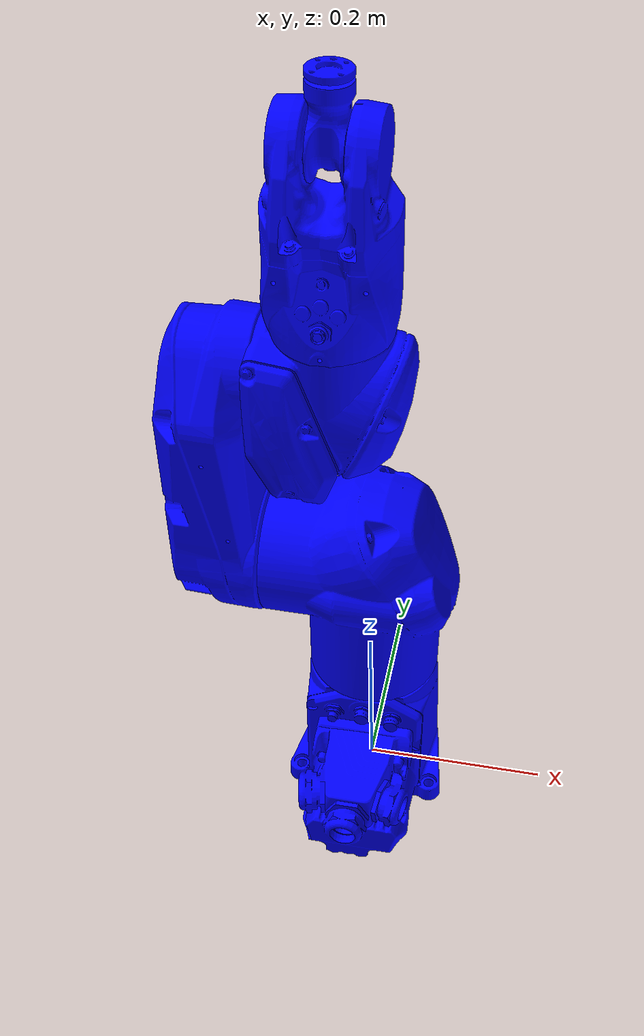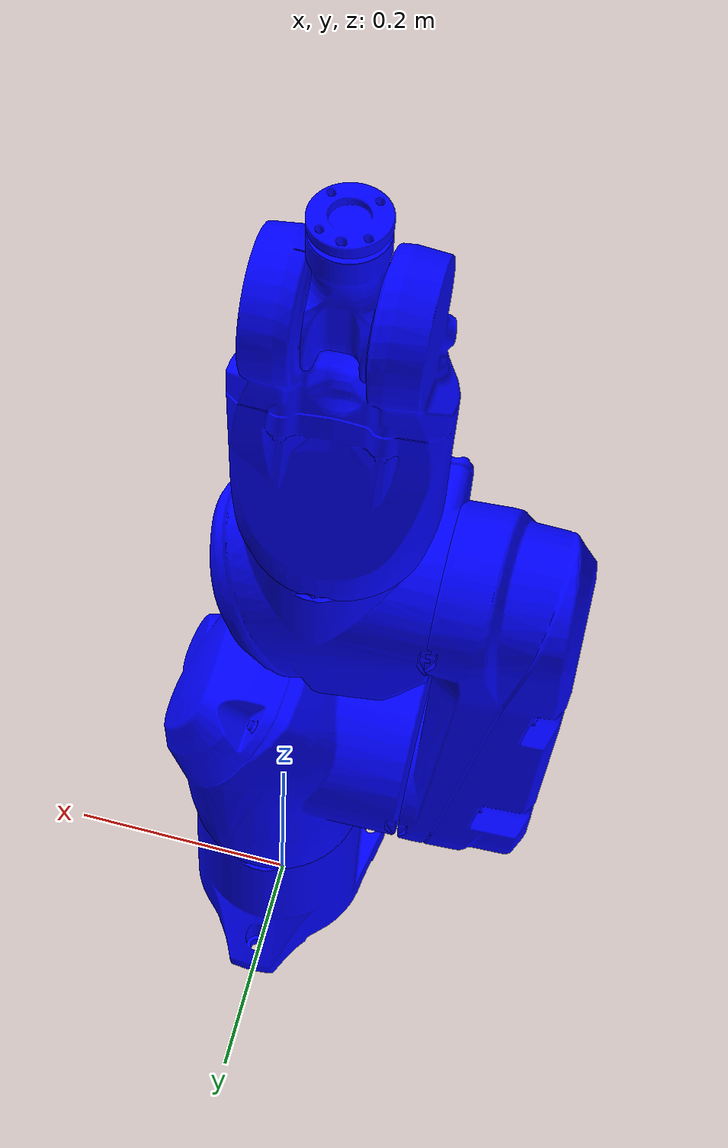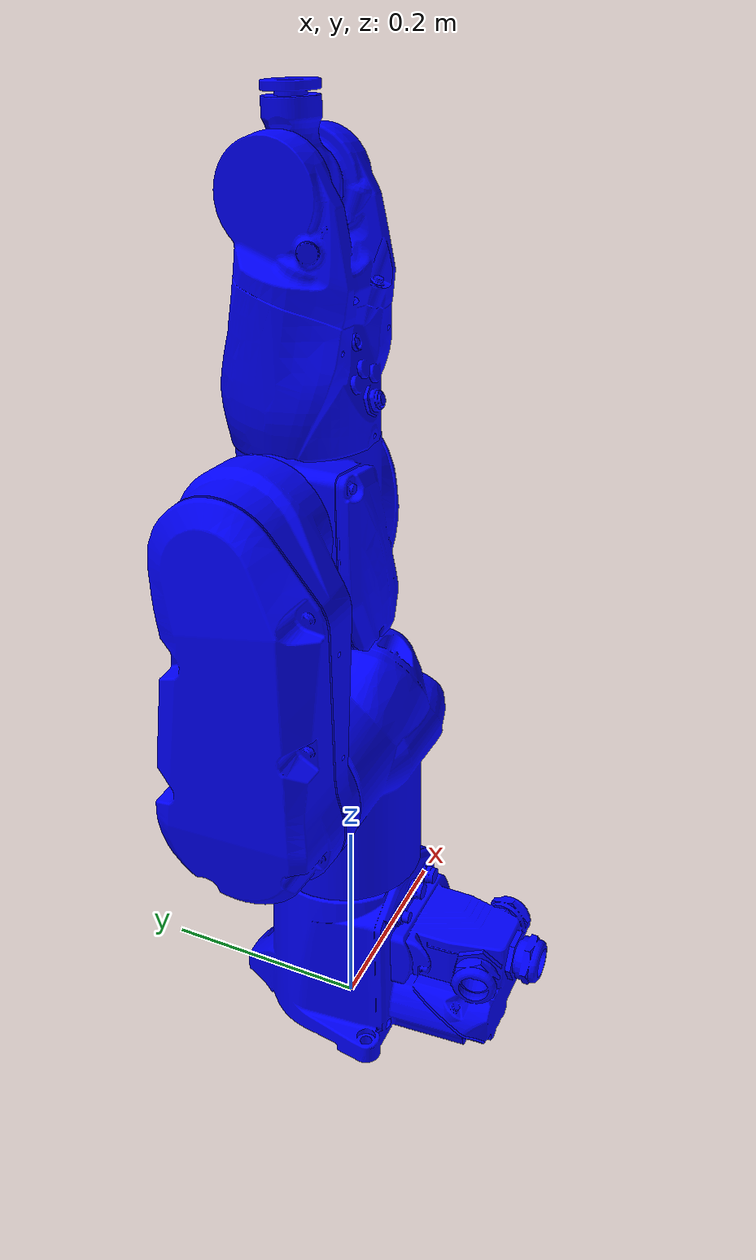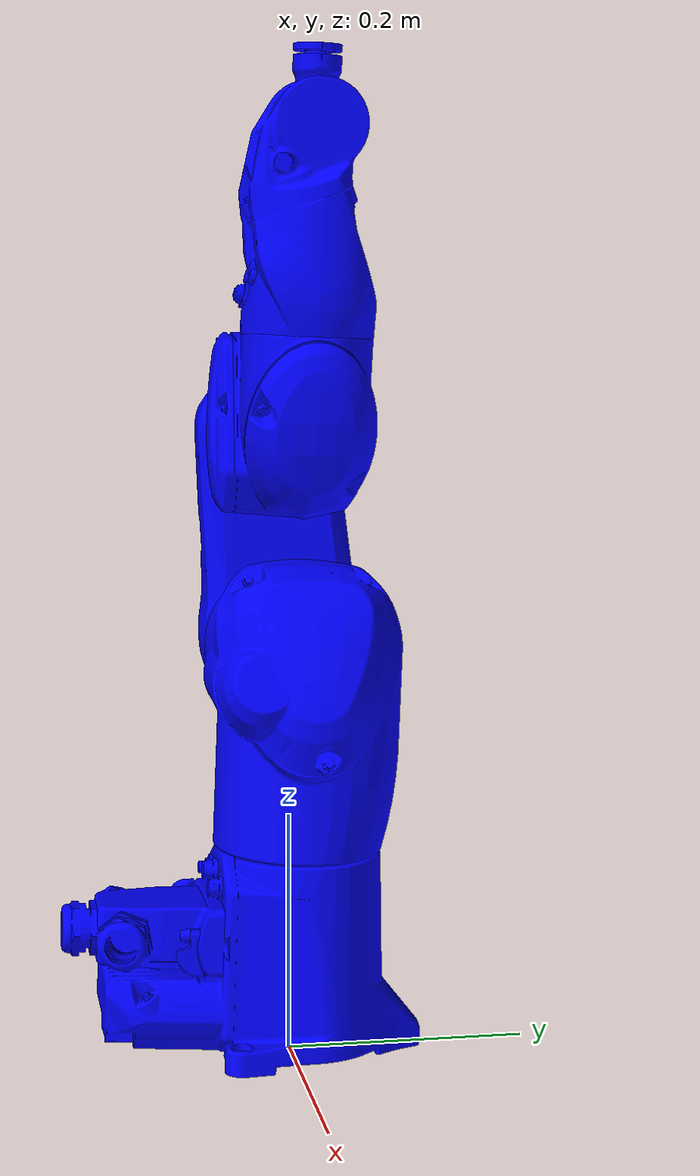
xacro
<?xml version="1.0"?>

<robot xmlns:xacro="http://www.ros.org/wiki/xacro" name="RobotTX40System">
    <xacro:include filename="$(find tx40_simulation)/urdf/tx40_gazebo.xacro" />
    <xacro:include filename="$(find tx40_simulation)/urdf/tx40_ros2_control.xacro" />

    <xacro:property name="d1" value="0.320" />
    <xacro:property name="a3" value="0.225" />
    <xacro:property name="d3" value="-0.035" />
    <xacro:property name="d4" value="0.225" />
    <xacro:property name="a6" value="0.055" />
    <xacro:property name="scalingX" value="1" />
    <xacro:property name="scalingY" value="1" />
    <xacro:property name="scalingZ" value="1" />
    <xacro:property name="PI" value="3.14" />
    <xacro:property name="limitJ2" value="3.14/2" />
    <xacro:property name="limitJ3" value="3.14/2" />
    <xacro:property name="limitJ5" value="3.14/2" />

    <xacro:property name="use_collision" value="true"/>
    <xacro:property name="use_cilinders" value="false"/>

    <xacro:macro name="material" params="color">
      <material name="blue">
        <color rgba="0 0 1 1"/>
      </material>
    </xacro:macro>

    <xacro:macro name="default_inertial" params="mass">
      <inertial>
        <mass value="${mass}"/>
        <inertia ixx="1"  ixy="0"  ixz="0" iyy="1" iyz="0" izz="1" />
      </inertial>
    </xacro:macro>

  <link name="world"/>

  <link name="base_link">
    <!-- Link base -->
    <xacro:default_inertial mass="1" />
    <visual>
      <origin rpy="0 0 0" xyz="0.03 0.00005 0"/>
      <geometry>
        <xacro:if value="${use_cilinders}">
          <box size="0.1 0.1 0.3"/>
        </xacro:if>
        <xacro:unless value="${use_cilinders}">
          <mesh filename='package://tx40_simulation/meshes/base.stl' scale="${scalingX} ${scalingY} ${scalingZ}"/>
        </xacro:unless>
        </geometry>
      <xacro:material color="blue" />
    </visual>
    <!-- The same mesh as for visualization is used -->
    <xacro:if value="${use_collision}">
      <collision>
        <origin rpy="0 0 0" xyz="0 0 0.085"/>
        <geometry>
          <cylinder radius="0.07" length="0.17"/>
        </geometry>
      </collision>
    </xacro:if>
  </link>

  <joint name="virtual_joint" type="fixed">
    <parent link="world"/>
    <child link="base_link"/>
    <origin xyz="0 0 0" rpy="0 0 0"/>
    <axis xyz="0 0 0"/>
  </joint>

   <link name="link_1">
    <!-- Link 1 -->
    <xacro:default_inertial mass="0.1" />
    <visual>
      <origin rpy="0 0 0" xyz="0.03 0.001 -0.320"/>
      <geometry>
        <xacro:if value="${use_cilinders}">
          <box size="0.01 0.01 0.03"/>
        </xacro:if>
        <xacro:unless value="${use_cilinders}">
          <mesh filename='package://tx40_simulation/meshes/link1.stl' scale="${scalingX} ${scalingY} ${scalingZ}"/>
        </xacro:unless>
      </geometry>
      <xacro:material color="blue" />
    </visual>
    <xacro:if value="${use_collision}">
      <collision>
        <origin rpy="0 0 0" xyz="0 0 -0.025"/>
        <geometry>
          <cylinder radius="0.07" length="0.15"/>
        </geometry>
      </collision>
    </xacro:if>
  </link>

  <joint name="joint_1" type="revolute">
    <origin rpy="0 0 0" xyz="0 0 ${d1}"/>
    <parent link="base_link"/>
    <child link="link_1"/>
    <axis xyz="0 0 1"/>
    <limit effort="100" velocity="1.0" lower="-3.14" upper="3.14"/>
  </joint>

  <link name="link_2">
  <xacro:default_inertial mass="0.1" />
    <!-- Link 2 -->
    <visual>
      <origin rpy="0 0 0" xyz="0.03 0.001 -0.320"/>
      <geometry>
        <xacro:if value="${use_cilinders}">
          <box size="0.01 0.01 0.03"/>
        </xacro:if>
        <xacro:unless value="${use_cilinders}">
          <mesh filename='package://tx40_simulation/meshes/link2.stl' scale="${scalingX} ${scalingY} ${scalingZ}"/>
        </xacro:unless>
      </geometry>
      <xacro:material color="blue" />
    </visual>
    <xacro:if value="${use_collision}">
      <collision>
        <origin rpy="0 0 0" xyz="-0.15 0 0.1"/>
        <geometry>
          <box size="0.1 0.06 0.2"/>
        </geometry>
      </collision>
    </xacro:if>
  </link>

  <joint name="joint_2" type="revolute">
    <origin rpy="0 0 0" xyz="0 0 0"/>
    <parent link="link_1"/>
    <child link="link_2"/>
    <axis xyz="-1 0 0"/>
    <limit effort="100" velocity="1.0" lower="-1.57" upper="1.57"/>
  </joint>

  <link name="link_3">
  <xacro:default_inertial mass="0.1" />
    <!-- Link 3 -->
    <visual>
      <origin rpy="0 0 0" xyz="0.06 0 -0.55"/>
      <geometry>
        <xacro:if value="${use_cilinders}">
          <box size="0.01 0.01 0.03"/>
        </xacro:if>
        <xacro:unless value="${use_cilinders}">
          <mesh filename='package://tx40_simulation/meshes/link3.stl' scale="${scalingX} ${scalingY} ${scalingZ}"/>
        </xacro:unless>
      </geometry>
      <xacro:material color="blue" />
    </visual>
    <xacro:if value="${use_collision}">
      <collision>
        <origin rpy="0 0 0" xyz="0 0 0"/>
        <geometry>
          <cylinder radius="0.06" length="0.08"/>
        </geometry>
      </collision>
    </xacro:if>
  </link>

  <joint name="joint_3" type="revolute">
    <origin rpy="0 0 0" xyz="${d3} 0 ${a3}"/>
    <parent link="link_2"/>
    <child link="link_3"/>
    <axis xyz="-1 0 0"/>
    <limit effort="100" velocity="1.0" lower="-1.57" upper="1.57"/>
  </joint>

  <link name="link_4">
    <!-- Link 4 -->
    <xacro:default_inertial mass="0.1" />
    <visual>
      <origin rpy="0 0 0" xyz="0.058 -0.03 -0.780"/>
      <geometry>
        <xacro:if value="${use_cilinders}">
          <box size="0.01 0.01 0.03"/>
        </xacro:if>
        <xacro:unless value="${use_cilinders}">
          <mesh filename='package://tx40_simulation/meshes/link4.stl' scale="${scalingX} ${scalingY} ${scalingZ}"/>
        </xacro:unless>
      </geometry>
      <xacro:material color="blue" />
    </visual>
    <xacro:if value="${use_collision}">
      <collision>
        <origin rpy="0 0 0" xyz="0 0 -0.07"/>
        <geometry>
          <cylinder radius="0.06" length="0.09"/>
        </geometry>
      </collision>
    </xacro:if>
  </link>

  <joint name="joint_4" type="revolute">
    <origin rpy="0 0 0" xyz="0 0.03 ${d4}"/>
    <parent link="link_3"/>
    <child link="link_4"/>
    <axis xyz="0 0 1"/>
    <limit effort="100" velocity="1.0" lower="-3.14" upper="3.14"/>
  </joint>

  <link name="link_5">
    <!-- Link 5 -->
    <xacro:default_inertial mass="0.1" />
    <visual>
      <origin rpy="0 0 0" xyz="0.058 -0.03 -0.78"/>
      <geometry>
        <xacro:if value="${use_cilinders}">
          <box size="0.01 0.01 0.03"/>
        </xacro:if>
        <xacro:unless value="${use_cilinders}">
          <mesh filename='package://tx40_simulation/meshes/link5.stl' scale="${scalingX} ${scalingY} ${scalingZ}"/>
        </xacro:unless>
      </geometry>
      <xacro:material color="blue" />
    </visual>
    <xacro:if value="${use_collision}">
      <collision>
        <origin rpy="0 0 0" xyz="0 0 0.023"/>
        <geometry>
          <cylinder radius="0.02" length="0.025"/>
        </geometry>
      </collision>
    </xacro:if>
  </link>

  <joint name="joint_5" type="revolute">
    <origin rpy="0 0 0" xyz="0 0.0 0"/>
    <parent link="link_4"/>
    <child link="link_5"/>
    <axis xyz="-1 0 0"/>
    <limit effort="100" velocity="1.0" lower="-1.57" upper="1.57"/>
  </joint>

  <link name="ee">
    <!-- EE -->
    <xacro:default_inertial mass="0.1" />
    <visual>
      <origin rpy="0 0 0" xyz="0.058 -0.03 -0.835"/>
      <geometry>
        <xacro:if value="${use_cilinders}">
          <box size="0.01 0.01 0.03"/>
        </xacro:if>
        <xacro:unless value="${use_cilinders}">
          <mesh filename='package://tx40_simulation/meshes/ee.stl' scale="${scalingX} ${scalingY} ${scalingZ}"/>
        </xacro:unless>
      </geometry>
      <xacro:material color="blue" />
    </visual>
    <xacro:if value="${use_collision}">
      <collision>
        <origin rpy="0 0 0" xyz="0 0 0"/>
        <geometry>
          <cylinder radius="0.02" length="0.02"/>
        </geometry>
      </collision>
    </xacro:if>
  </link>

  <joint name="joint_6" type="revolute">
    <origin rpy="0 0 0" xyz="0 0.0 ${a6}"/>
    <parent link="link_5"/>
    <child link="ee"/>
    <axis xyz="0 0 1"/>
    <limit effort="100" velocity="1.0" lower="-3.14" upper="3.14"/>
  </joint>

</robot>
